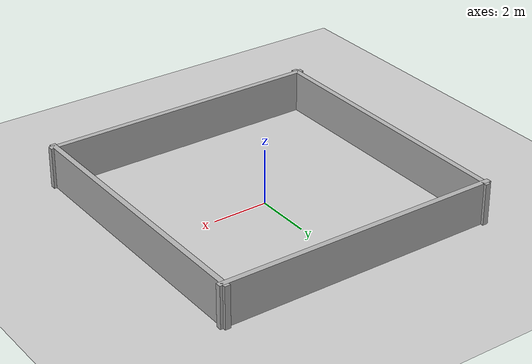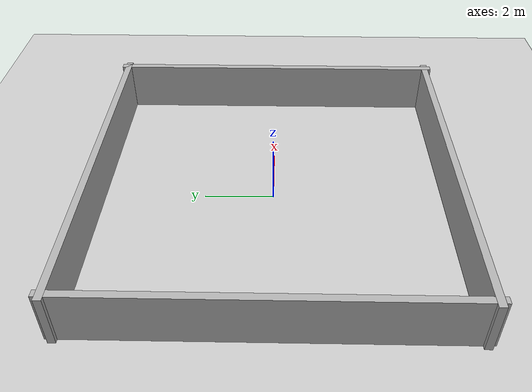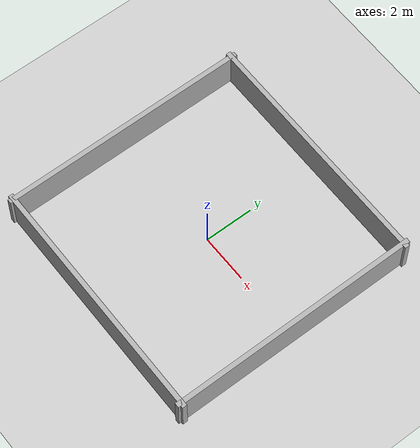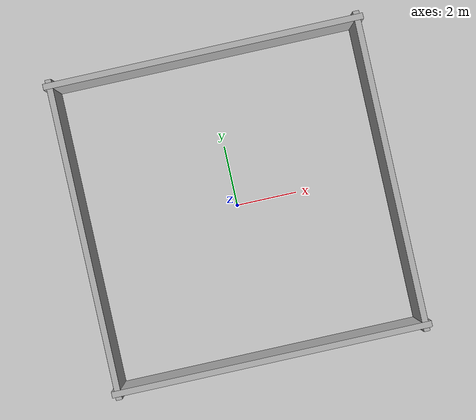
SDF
<sdf version='1.7'>
  <world name='default'>
    <light name='sun' type='directional'>
      <cast_shadows>1</cast_shadows>
      <pose>0 0 10 0 -0 0</pose>
      <diffuse>0.8 0.8 0.8 1</diffuse>
      <specular>0.2 0.2 0.2 1</specular>
      <attenuation>
        <range>1000</range>
        <constant>0.9</constant>
        <linear>0.01</linear>
        <quadratic>0.001</quadratic>
      </attenuation>
      <direction>-0.5 0.1 -0.9</direction>
      <spot>
        <inner_angle>0</inner_angle>
        <outer_angle>0</outer_angle>
        <falloff>0</falloff>
      </spot>
    </light>
    <gravity>0 0 -9.8</gravity>
    <magnetic_field>6e-06 2.3e-05 -4.2e-05</magnetic_field>
    <atmosphere type='adiabatic'/>
    <physics type='ode'>
      <max_step_size>0.001</max_step_size>
      <real_time_factor>1</real_time_factor>
      <real_time_update_rate>1000</real_time_update_rate>
    </physics>
    <scene>
      <ambient>0.4 0.4 0.4 1</ambient>
      <background>0.7 0.7 0.7 1</background>
      <shadows>1</shadows>
    </scene>
    <wind/>
    <spherical_coordinates>
      <surface_model>EARTH_WGS84</surface_model>
      <latitude_deg>0</latitude_deg>
      <longitude_deg>0</longitude_deg>
      <elevation>0</elevation>
      <heading_deg>0</heading_deg>
    </spherical_coordinates>

    <model name='ground_plane'>
      <static>1</static>
      <link name='link'>
        <collision name='collision'>
          <geometry>
            <plane>
              <normal>0 0 1</normal>
              <size>100 100</size>
            </plane>
          </geometry>
          <surface>
            <contact>
              <collide_bitmask>65535</collide_bitmask>
              <ode/>
            </contact>
            <friction>
              <ode>
                <mu>100</mu>
                <mu2>50</mu2>
              </ode>
              <torsional>
                <ode/>
              </torsional>
            </friction>
            <bounce/>
          </surface>
          <max_contacts>10</max_contacts>
        </collision>
        <visual name='visual'>
          <cast_shadows>0</cast_shadows>
          <geometry>
            <plane>
              <normal>0 0 1</normal>
              <size>100 100</size>
            </plane>
          </geometry>
          <material>
            <script>
              <uri>file://media/materials/scripts/gazebo.material</uri>
              <name>Gazebo/Grey</name>
            </script>
          </material>
        </visual>
        <self_collide>0</self_collide>
        <enable_wind>0</enable_wind>
        <kinematic>0</kinematic>
      </link>
    </model>

    <model name='arena'>
      <static>1</static>
      <link name='wall_north'>
        <collision name='wall_north_collision'>
          <laser_retro>500</laser_retro>
          <geometry>
            <box>
              <size>10.4 0.2 1.5</size>
            </box>
          </geometry>
          <pose>0 0 0.75 0 -0 0</pose>
          <max_contacts>10</max_contacts>
          <surface>
            <contact>
              <ode/>
            </contact>
            <bounce/>
            <friction>
              <torsional>
                <ode/>
              </torsional>
              <ode/>
            </friction>
          </surface>
        </collision>
        <visual name='wall_north_visual'>
          <pose>0 0 0.75 0 -0 0</pose>
          <geometry>
            <box>
              <size>10.4 0.2 1.5</size>
            </box>
          </geometry>
          <material>
            <ambient>0.7 0.7 0.7 1</ambient>
            <diffuse>0.7 0.7 0.7 1</diffuse>
            <specular>0.1 0.1 0.1 1</specular>
            <emissive>0 0 0 1</emissive>
          </material>
        </visual>
        <pose>0 5 0 0 -0 0</pose>
        <self_collide>0</self_collide>
        <kinematic>0</kinematic>
        <enable_wind>0</enable_wind>
      </link>
      <link name='wall_south'>
        <collision name='wall_south_collision'>
          <laser_retro>500</laser_retro>
          <geometry>
            <box>
              <size>10.4 0.2 1.5</size>
            </box>
          </geometry>
          <pose>0 0 0.75 0 -0 0</pose>
          <max_contacts>10</max_contacts>
          <surface>
            <contact>
              <ode/>
            </contact>
            <bounce/>
            <friction>
              <torsional>
                <ode/>
              </torsional>
              <ode/>
            </friction>
          </surface>
        </collision>
        <visual name='wall_south_visual'>
          <pose>0 0 0.75 0 -0 0</pose>
          <geometry>
            <box>
              <size>10.4 0.2 1.5</size>
            </box>
          </geometry>
          <material>
            <ambient>0.7 0.7 0.7 1</ambient>
            <diffuse>0.7 0.7 0.7 1</diffuse>
            <specular>0.1 0.1 0.1 1</specular>
            <emissive>0 0 0 1</emissive>
          </material>
        </visual>
        <pose>0 -5 0 0 -0 0</pose>
        <self_collide>0</self_collide>
        <kinematic>0</kinematic>
        <enable_wind>0</enable_wind>
      </link>
      <link name='wall_east'>
        <collision name='wall_east_collision'>
          <laser_retro>500</laser_retro>
          <geometry>
            <box>
              <size>0.2 10.4 1.5</size>
            </box>
          </geometry>
          <pose>0 0 0.75 0 -0 0</pose>
          <max_contacts>10</max_contacts>
          <surface>
            <contact>
              <ode/>
            </contact>
            <bounce/>
            <friction>
              <torsional>
                <ode/>
              </torsional>
              <ode/>
            </friction>
          </surface>
        </collision>
        <visual name='wall_east_visual'>
          <pose>0 0 0.75 0 -0 0</pose>
          <geometry>
            <box>
              <size>0.2 10.4 1.5</size>
            </box>
          </geometry>
          <material>
            <ambient>0.7 0.7 0.7 1</ambient>
            <diffuse>0.7 0.7 0.7 1</diffuse>
            <specular>0.1 0.1 0.1 1</specular>
            <emissive>0 0 0 1</emissive>
          </material>
        </visual>
        <pose>5 0 0 0 -0 0</pose>
        <self_collide>0</self_collide>
        <kinematic>0</kinematic>
        <enable_wind>0</enable_wind>
      </link>
      <link name='wall_west'>
        <collision name='wall_west_collision'>
          <laser_retro>500</laser_retro>
          <geometry>
            <box>
              <size>0.2 10.4 1.5</size>
            </box>
          </geometry>
          <pose>0 0 0.75 0 -0 0</pose>
          <max_contacts>10</max_contacts>
          <surface>
            <contact>
              <ode/>
            </contact>
            <bounce/>
            <friction>
              <torsional>
                <ode/>
              </torsional>
              <ode/>
            </friction>
          </surface>
        </collision>
        <visual name='wall_west_visual'>
          <pose>0 0 0.75 0 -0 0</pose>
          <geometry>
            <box>
              <size>0.2 10.4 1.5</size>
            </box>
          </geometry>
          <material>
            <ambient>0.7 0.7 0.7 1</ambient>
            <diffuse>0.7 0.7 0.7 1</diffuse>
            <specular>0.1 0.1 0.1 1</specular>
            <emissive>0 0 0 1</emissive>
          </material>
        </visual>
        <pose>-5 0 0 0 -0 0</pose>
        <self_collide>0</self_collide>
        <kinematic>0</kinematic>
        <enable_wind>0</enable_wind>
      </link>
    </model>
  </world>
</sdf>
